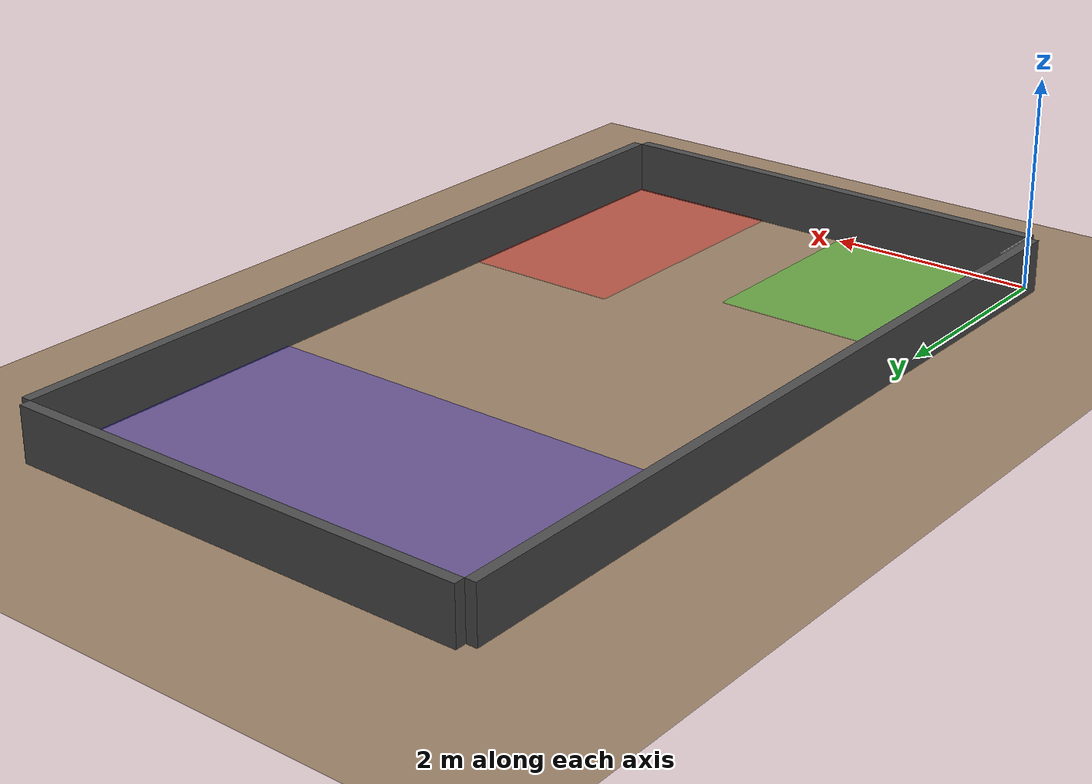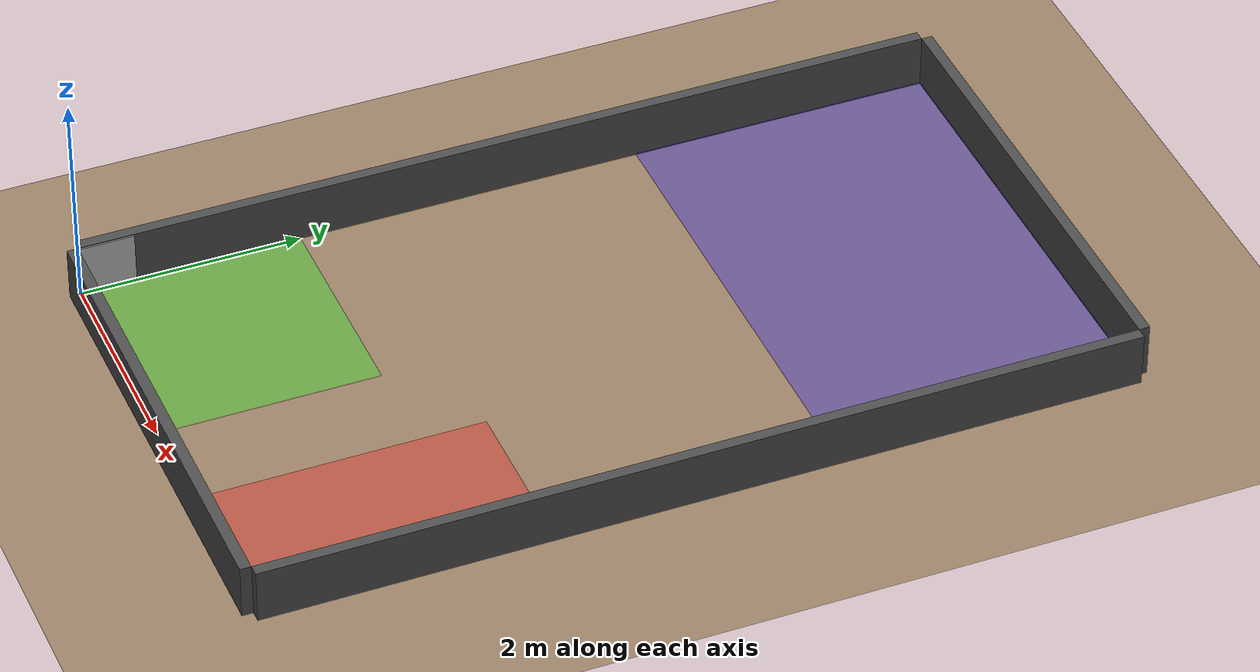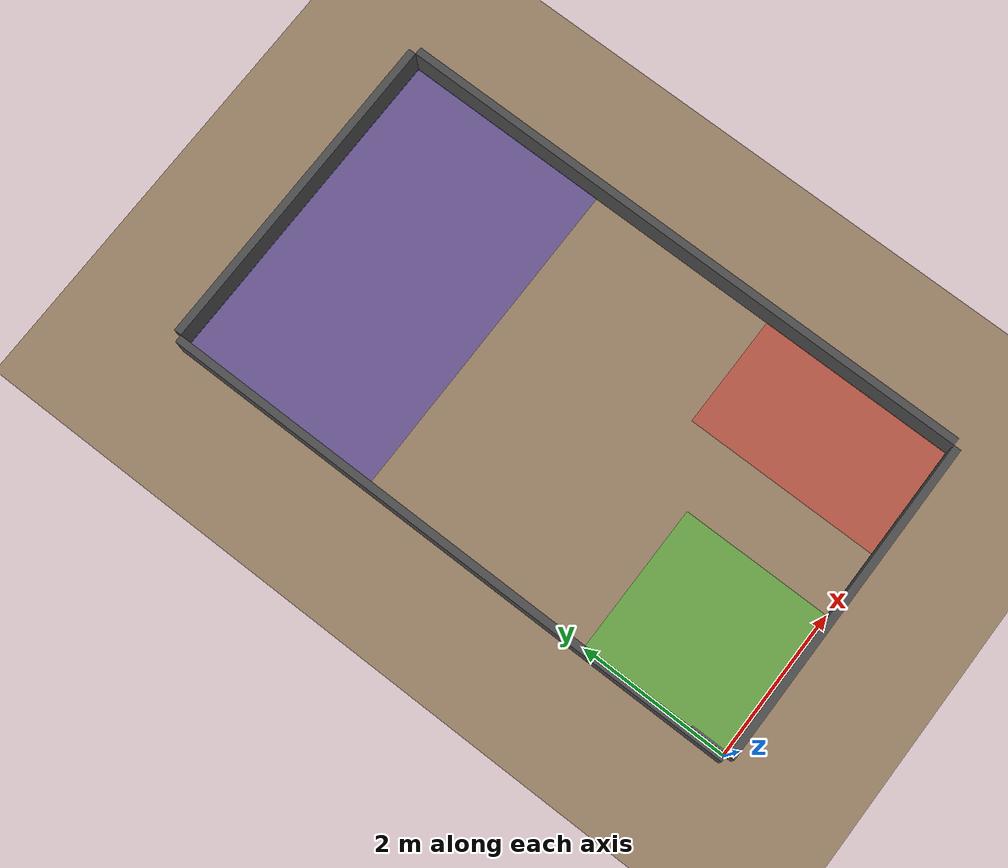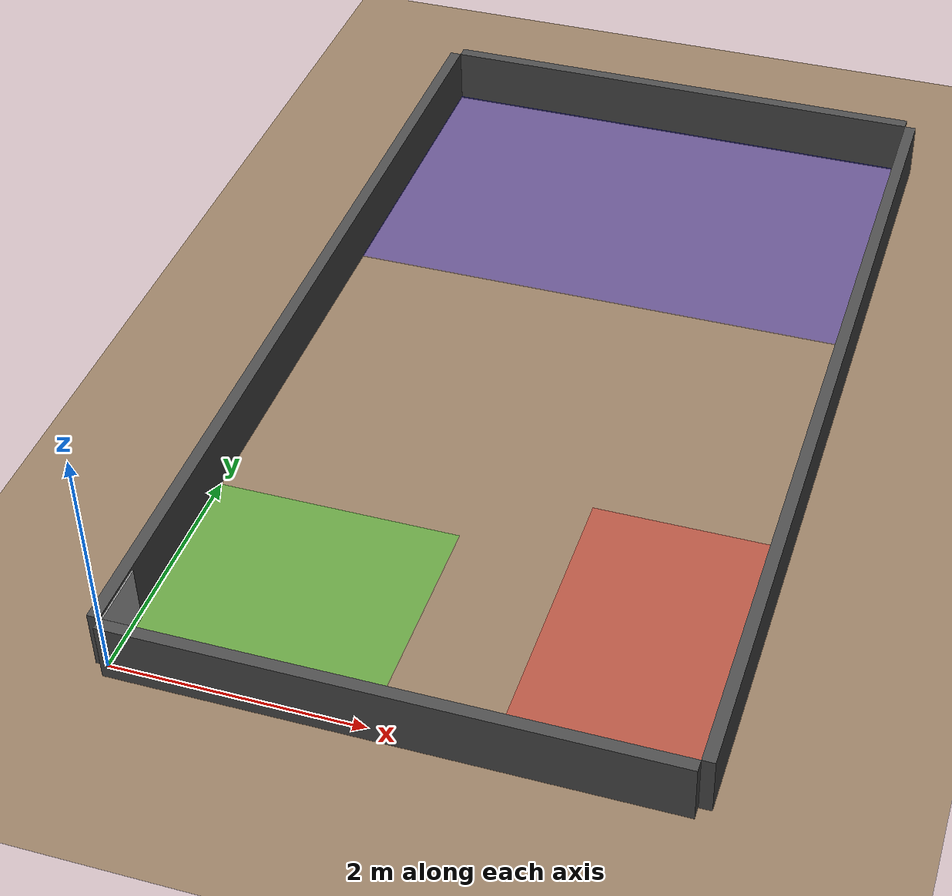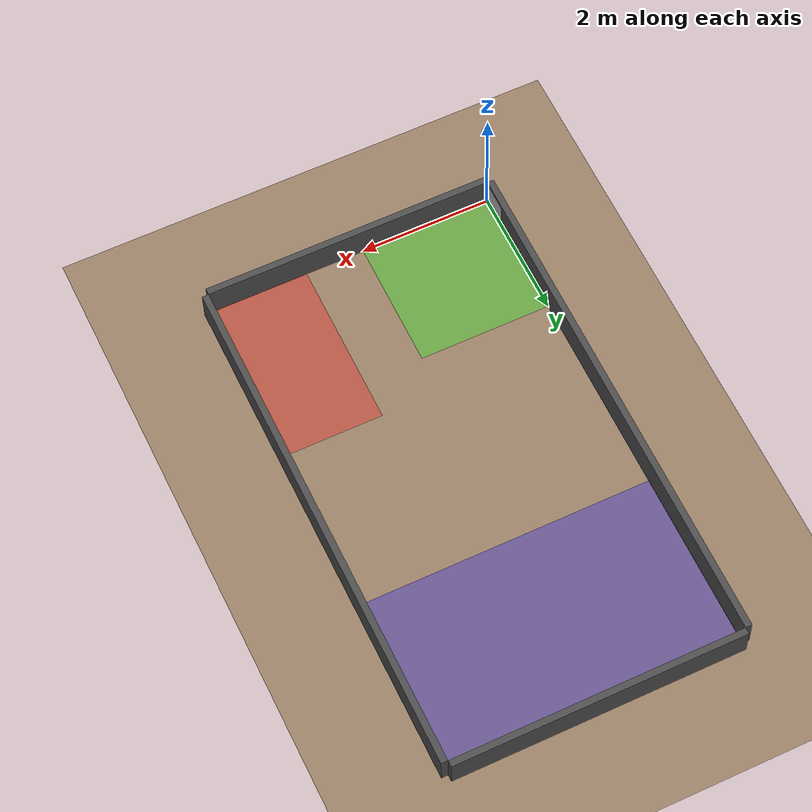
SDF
<?xml version="1.0"?>
<sdf version="1.6">
  <world name="lunabotics_uk_arena">

    <!-- PHYSICS -->
    <physics type="ode">
      <gravity>0 0 -9.81</gravity>
    </physics>

    <light type="directional" name="sun">
      <pose>0 0 10 0 0 0</pose>
      <direction>-0.5 0.1 -0.9</direction>
    </light>

    <!-- PHYSICAL ARENA -->
    <!-- Terrain -->
    <model name="ground_plane">
      <static>1</static>
      <link name="link">
        <collision name="collision">
          <geometry>
            <plane>
              <normal>0 0 1</normal>
              <size>4.4 7.9</size>
            </plane>
          </geometry>
        </collision>
        <visual name="visual">
          <geometry>
            <plane>
              <normal>0 0 1</normal>
              <size>4.4 7.9</size>
            </plane>
          </geometry>
          <material>
            <ambient>0.6 0.5 0.4 1</ambient>
            <diffuse>0.6 0.5 0.4 1</diffuse>
          </material>
        </visual>
        <pose>2.2 3.95 0 0 0 0</pose>
      </link>
    </model>

    <!-- Walls -->
    <model name="wall_south">
      <static>true</static>
      <link name="link">
        <collision name="collision">
          <geometry><box><size>4.4 0.1 0.5</size></box></geometry>
        </collision>
        <visual name="visual">
          <geometry><box><size>4.4 0.1 0.5</size></box></geometry>
          <material>
            <ambient>0.3 0.3 0.3 1</ambient>
            <diffuse>0.3 0.3 0.3 1</diffuse>
          </material>
        </visual>
        <pose>2.2 -0.05 0.25 0 0 0</pose>
      </link>
    </model>

    <model name="wall_north">
      <static>true</static>
      <link name="link">
        <collision name="collision">
          <geometry><box><size>4.4 0.1 0.5</size></box></geometry>
        </collision>
        <visual name="visual">
          <geometry><box><size>4.4 0.1 0.5</size></box></geometry>
          <material>
            <ambient>0.3 0.3 0.3 1</ambient>
            <diffuse>0.3 0.3 0.3 1</diffuse>
          </material>
        </visual>
        <pose>2.2 7.95 0.25 0 0 0</pose>
      </link>
    </model>

    <model name="wall_west">
      <static>true</static>
      <link name="link">
        <collision name="collision">
          <geometry><box><size>0.1 7.9 0.5</size></box></geometry>
        </collision>
        <visual name="visual">
          <geometry><box><size>0.1 7.9 0.5</size></box></geometry>
          <material>
            <ambient>0.3 0.3 0.3 1</ambient>
            <diffuse>0.3 0.3 0.3 1</diffuse>
          </material>
        </visual>
        <pose>-0.05 3.95 0.25 0 0 0</pose>
      </link>
    </model>

    <model name="wall_east">
      <static>true</static>
      <link name="link">
        <collision name="collision">
          <geometry><box><size>0.1 7.9 0.5</size></box></geometry>
        </collision>
        <visual name="visual">
          <geometry><box><size>0.1 7.9 0.5</size></box></geometry>
          <material>
            <ambient>0.3 0.3 0.3 1</ambient>
            <diffuse>0.3 0.3 0.3 1</diffuse>
          </material>
        </visual>
        <pose>4.45 3.95 0.25 0 0 0</pose>
      </link>
    </model>

    <!-- Zone Markers (visual only) -->
    <!-- Excavation Zone -->
    <model name="excavation_zone_marker">
      <static>true</static>
      <link name="link">
        <visual name="visual">
          <geometry>
            <box>
              <size>4.4 2.75 0.01</size>
            </box>
          </geometry>
          <material>
            <ambient>0 0 1 0.3</ambient>
            <diffuse>0 0 1 0.3</diffuse>
          </material>
        </visual>
        <pose>2.2 6.525 0.005 0 0 0</pose>
      </link>
    </model>

    <!-- Starting Zone -->
    <model name="starting_zone_marker">
      <static>true</static>
      <link name="link">
        <visual name="visual">
          <geometry>
            <box>
              <size>2.0 2.0 0.01</size>
            </box>
          </geometry>
          <material>
            <ambient>0 1 0 0.3</ambient>
            <diffuse>0 1 0 0.3</diffuse>
          </material>
        </visual>
        <pose>1.0 1.0 0.005 0 0 0</pose>
      </link>
    </model>

    <!-- Construction Zone -->
    <model name="construction_zone_marker">
      <static>true</static>
      <link name="link">
        <visual name="visual">
          <geometry>
            <box>
              <size>1.5 2.6 0.01</size>
            </box>
          </geometry>
          <material>
            <ambient>1 0 0 0.3</ambient>
            <diffuse>1 0 0 0.3</diffuse>
          </material>
        </visual>
        <pose>3.65 1.3 0.005 0 0 0</pose>
      </link>
    </model>

    <!-- APRILTAG -->
    <model name="apriltag_0">
      <static>true</static>
      <pose>0.02 0.25 0.25 0 0 0</pose>
      <link name="link">
        <collision name="collision">
          <geometry><box><size>0.01 0.5 0.5</size></box></geometry>
        </collision>
        <visual name="visual">
          <geometry><box><size>0.01 0.5 0.5</size></box></geometry>
          <material>
            <script>
              <uri>model://apriltag_model/materials/scripts/apriltag.material</uri>
              <uri>model://apriltag_model/materials/textures/</uri>
              <name>AprilTag/tag0</name>
            </script>
          </material>
        </visual>
      </link>
    </model>

  </world>
</sdf>
